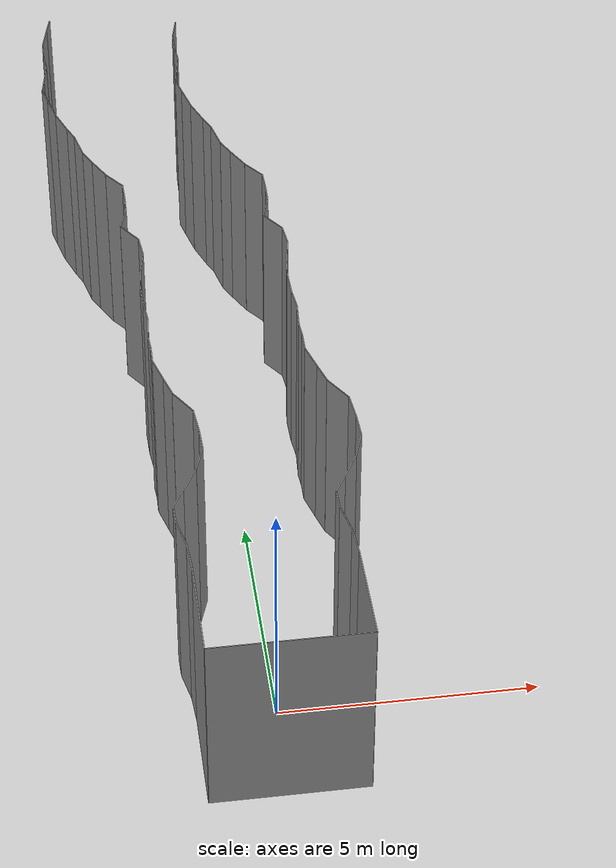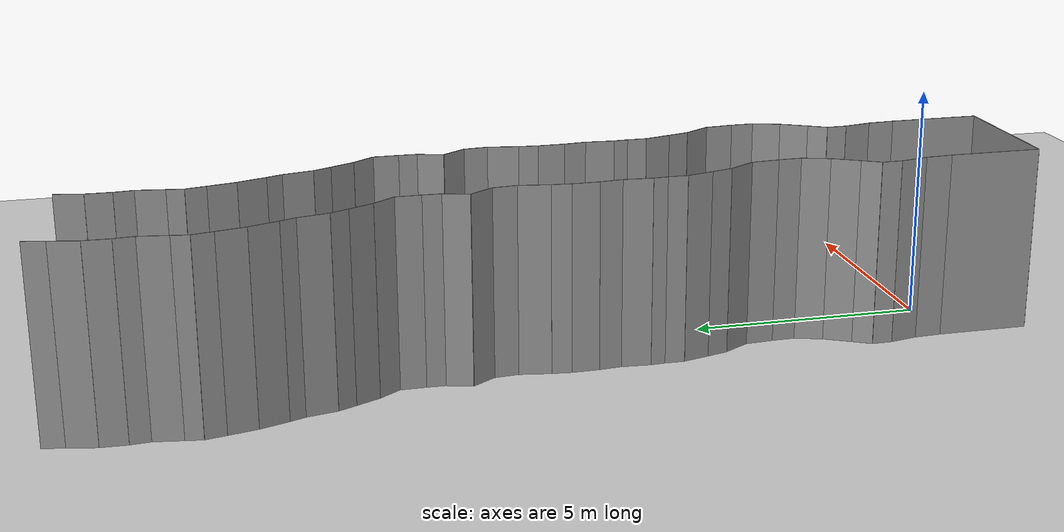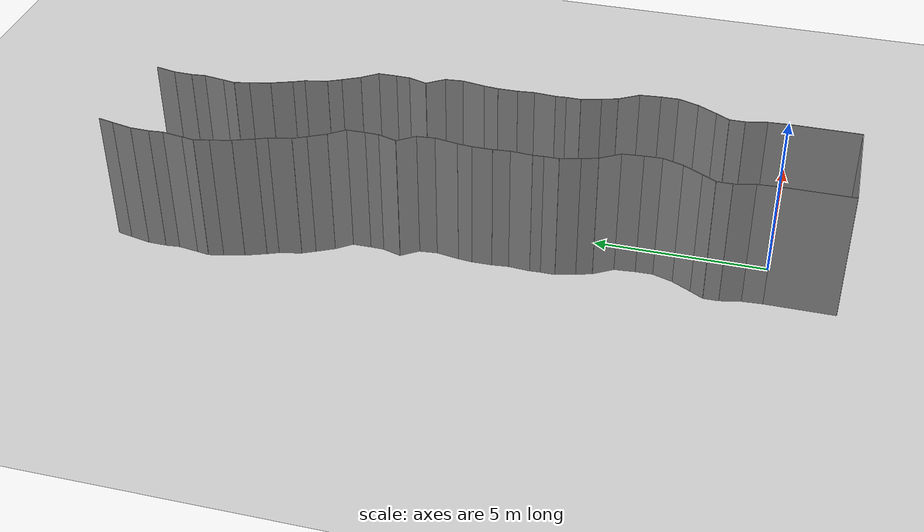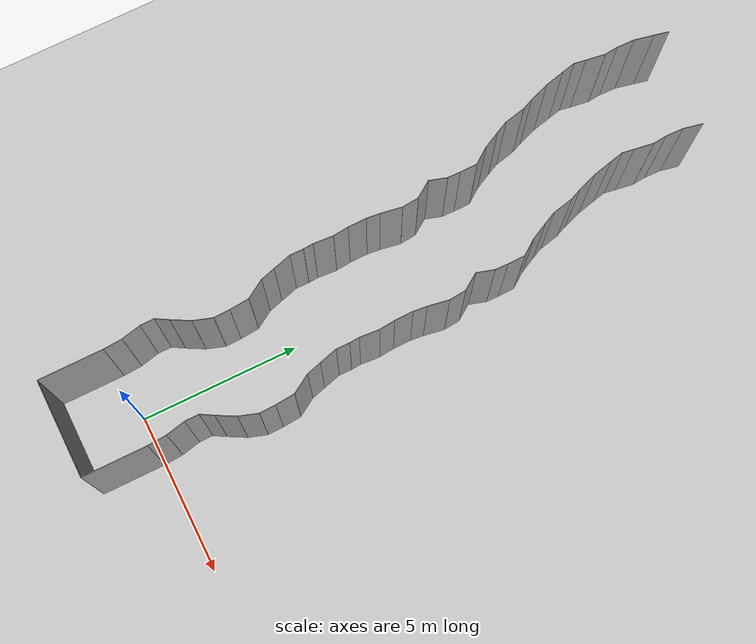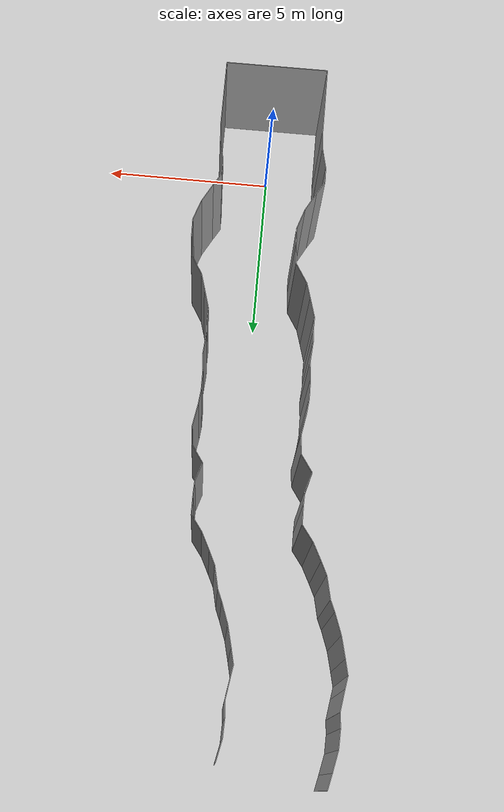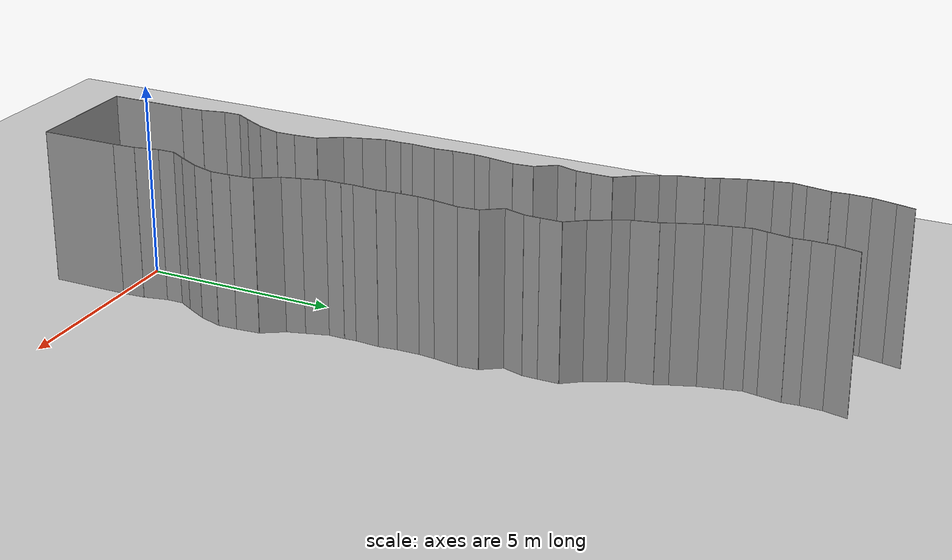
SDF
<sdf version="1.6">
 <world name="default">
  <model name="ground_plane">
   <static>1</static>
   <link name="link">
    <collision name="collision">
     <geometry><plane><normal>0 0 1</normal><size>200 200</size></plane></geometry>
     <surface><friction><ode><mu>100</mu><mu2>50</mu2></ode></friction></surface>
    </collision>
    <visual name="visual">
     <cast_shadows>0</cast_shadows>
     <geometry><plane><normal>0 0 1</normal><size>200 200</size></plane></geometry>
     <material>
      <script><uri>file://media/materials/scripts/gazebo.material</uri><name>Gazebo/Grey</name></script>
     </material>
    </visual>
   </link>
   <pose>0 100 0 0 -0 0</pose>
  </model>
  <model name="wall_back">
   <static>1</static>
   <pose>0.0 -2 2 0.0 0 0.0</pose>
   <link name="link">
    <collision name="collision"><geometry><box><size>3 0.02 4</size></box></geometry></collision>
    <visual name="visual">
     <material>
      <script><name>Gazebo/Grey</name><uri>file://media/materials/scripts/gazebo.material</uri></script>
     </material>
     <geometry><box><size>3 0.02 4</size></box></geometry>
    </visual>
   </link>
  </model>
  <model name="wall_left">
   <static>1</static>
   <pose>1.5 -1 2 0 0 0.00</pose>
   <link name="link">
    <collision name="collision"><geometry><box><size>0.02 2 4</size></box></geometry></collision>
    <visual name="visual">
     <material>
      <script><name>Gazebo/Grey</name><uri>file://media/materials/scripts/gazebo.material</uri></script>
     </material>
     <geometry><box><size>0.02 2 4</size></box></geometry>
    </visual>
   </link>
  </model>
  <model name="wall_right">
   <static>1</static>
   <pose>-1.5 -1 2 0 0 0.00</pose>
   <link name="link">
    <collision name="collision"><geometry><box><size>0.02 2 4</size></box></geometry></collision>
    <visual name="visual">
     <material>
      <script><name>Gazebo/Grey</name><uri>file://media/materials/scripts/gazebo.material</uri></script>
     </material>
     <geometry><box><size>0.02 2 4</size></box></geometry>
    </visual>
   </link>
  </model>
  <model name="wall_0">
   <static>1</static>
   <pose>-1.5185113302899953 0.29492053365941223 2 0 0 0.06268494618193361</pose>
   <link name="link">
    <collision name="collision"><geometry><box><size>0.02 0.591001829178 4</size></box></geometry></collision>
    <visual name="visual">
     <material>
      <script><name>Gazebo/Grey</name><uri>file://media/materials/scripts/gazebo.material</uri></script>
     </material>
     <geometry><box><size>0.02 0.591001829178 4</size></box></geometry>
    </visual>
   </link>
  </model>
  <model name="wall_1">
   <static>1</static>
   <pose>1.4814886697100047 0.29492053365941223 2 0 0 0.06268494618193361</pose>
   <link name="link">
    <collision name="collision"><geometry><box><size>0.02 0.591001829178 4</size></box></geometry></collision>
    <visual name="visual">
     <material>
      <script><name>Gazebo/Grey</name><uri>file://media/materials/scripts/gazebo.material</uri></script>
     </material>
     <geometry><box><size>0.02 0.591001829178 4</size></box></geometry>
    </visual>
   </link>
  </model>
  <model name="wall_2">
   <static>1</static>
   <pose>-1.6032829919916214 0.8934209799906332 2 0 0 0.21489310873033826</pose>
   <link name="link">
    <collision name="collision"><geometry><box><size>0.02 0.621453763032 4</size></box></geometry></collision>
    <visual name="visual">
     <material>
      <script><name>Gazebo/Grey</name><uri>file://media/materials/scripts/gazebo.material</uri></script>
     </material>
     <geometry><box><size>0.02 0.621453763032 4</size></box></geometry>
    </visual>
   </link>
  </model>
  <model name="wall_3">
   <static>1</static>
   <pose>1.3967170080083786 0.8934209799906332 2 0 0 0.21489310873033826</pose>
   <link name="link">
    <collision name="collision"><geometry><box><size>0.02 0.621453763032 4</size></box></geometry></collision>
    <visual name="visual">
     <material>
      <script><name>Gazebo/Grey</name><uri>file://media/materials/scripts/gazebo.material</uri></script>
     </material>
     <geometry><box><size>0.02 0.621453763032 4</size></box></geometry>
    </visual>
   </link>
  </model>
  <model name="wall_4">
   <static>1</static>
   <pose>-1.6717699181645493 1.4165930140627472 2 0 0 0.01013933671222926</pose>
   <link name="link">
    <collision name="collision"><geometry><box><size>0.02 0.439206819188 4</size></box></geometry></collision>
    <visual name="visual">
     <material>
      <script><name>Gazebo/Grey</name><uri>file://media/materials/scripts/gazebo.material</uri></script>
     </material>
     <geometry><box><size>0.02 0.439206819188 4</size></box></geometry>
    </visual>
   </link>
  </model>
  <model name="wall_5">
   <static>1</static>
   <pose>1.3282300818354507 1.4165930140627472 2 0 0 0.01013933671222926</pose>
   <link name="link">
    <collision name="collision"><geometry><box><size>0.02 0.439206819188 4</size></box></geometry></collision>
    <visual name="visual">
     <material>
      <script><name>Gazebo/Grey</name><uri>file://media/materials/scripts/gazebo.material</uri></script>
     </material>
     <geometry><box><size>0.02 0.439206819188 4</size></box></geometry>
    </visual>
   </link>
  </model>
  <model name="wall_6">
   <static>1</static>
   <pose>-1.564483555409787 1.8261166421047403 2 0 0 -0.5230297693793418</pose>
   <link name="link">
    <collision name="collision"><geometry><box><size>0.02 0.438484047961 4</size></box></geometry></collision>
    <visual name="visual">
     <material>
      <script><name>Gazebo/Grey</name><uri>file://media/materials/scripts/gazebo.material</uri></script>
     </material>
     <geometry><box><size>0.02 0.438484047961 4</size></box></geometry>
    </visual>
   </link>
  </model>
  <model name="wall_7">
   <static>1</static>
   <pose>1.435516444590213 1.8261166421047403 2 0 0 -0.5230297693793418</pose>
   <link name="link">
    <collision name="collision"><geometry><box><size>0.02 0.438484047961 4</size></box></geometry></collision>
    <visual name="visual">
     <material>
      <script><name>Gazebo/Grey</name><uri>file://media/materials/scripts/gazebo.material</uri></script>
     </material>
     <geometry><box><size>0.02 0.438484047961 4</size></box></geometry>
    </visual>
   </link>
  </model>
  <model name="wall_8">
   <static>1</static>
   <pose>-1.3079854881451538 2.28842004208476 2 0 0 -0.494861154514529</pose>
   <link name="link">
    <collision name="collision"><geometry><box><size>0.02 0.619002651912 4</size></box></geometry></collision>
    <visual name="visual">
     <material>
      <script><name>Gazebo/Grey</name><uri>file://media/materials/scripts/gazebo.material</uri></script>
     </material>
     <geometry><box><size>0.02 0.619002651912 4</size></box></geometry>
    </visual>
   </link>
  </model>
  <model name="wall_9">
   <static>1</static>
   <pose>1.6920145118548462 2.28842004208476 2 0 0 -0.494861154514529</pose>
   <link name="link">
    <collision name="collision"><geometry><box><size>0.02 0.619002651912 4</size></box></geometry></collision>
    <visual name="visual">
     <material>
      <script><name>Gazebo/Grey</name><uri>file://media/materials/scripts/gazebo.material</uri></script>
     </material>
     <geometry><box><size>0.02 0.619002651912 4</size></box></geometry>
    </visual>
   </link>
  </model>
  <model name="wall_10">
   <static>1</static>
   <pose>-1.0661413791661865 2.85140010841985 2 0 0 -0.31551159724259165</pose>
   <link name="link">
    <collision name="collision"><geometry><box><size>0.02 0.611396237959 4</size></box></geometry></collision>
    <visual name="visual">
     <material>
      <script><name>Gazebo/Grey</name><uri>file://media/materials/scripts/gazebo.material</uri></script>
     </material>
     <geometry><box><size>0.02 0.611396237959 4</size></box></geometry>
    </visual>
   </link>
  </model>
  <model name="wall_11">
   <static>1</static>
   <pose>1.9338586208338135 2.85140010841985 2 0 0 -0.31551159724259165</pose>
   <link name="link">
    <collision name="collision"><geometry><box><size>0.02 0.611396237959 4</size></box></geometry></collision>
    <visual name="visual">
     <material>
      <script><name>Gazebo/Grey</name><uri>file://media/materials/scripts/gazebo.material</uri></script>
     </material>
     <geometry><box><size>0.02 0.611396237959 4</size></box></geometry>
    </visual>
   </link>
  </model>
  <model name="wall_12">
   <static>1</static>
   <pose>-0.9777345321164603 3.392752021765001 2 0 0 0.02572637970492103</pose>
   <link name="link">
    <collision name="collision"><geometry><box><size>0.02 0.501653480369 4</size></box></geometry></collision>
    <visual name="visual">
     <material>
      <script><name>Gazebo/Grey</name><uri>file://media/materials/scripts/gazebo.material</uri></script>
     </material>
     <geometry><box><size>0.02 0.501653480369 4</size></box></geometry>
    </visual>
   </link>
  </model>
  <model name="wall_13">
   <static>1</static>
   <pose>2.02226546788354 3.392752021765001 2 0 0 0.02572637970492103</pose>
   <link name="link">
    <collision name="collision"><geometry><box><size>0.02 0.501653480369 4</size></box></geometry></collision>
    <visual name="visual">
     <material>
      <script><name>Gazebo/Grey</name><uri>file://media/materials/scripts/gazebo.material</uri></script>
     </material>
     <geometry><box><size>0.02 0.501653480369 4</size></box></geometry>
    </visual>
   </link>
  </model>
  <model name="wall_14">
   <static>1</static>
   <pose>-1.0103047833967183 3.9452632291662355 2 0 0 0.08633526419710445</pose>
   <link name="link">
    <collision name="collision"><geometry><box><size>0.02 0.605791248772 4</size></box></geometry></collision>
    <visual name="visual">
     <material>
      <script><name>Gazebo/Grey</name><uri>file://media/materials/scripts/gazebo.material</uri></script>
     </material>
     <geometry><box><size>0.02 0.605791248772 4</size></box></geometry>
    </visual>
   </link>
  </model>
  <model name="wall_15">
   <static>1</static>
   <pose>1.9896952166032817 3.9452632291662355 2 0 0 0.08633526419710445</pose>
   <link name="link">
    <collision name="collision"><geometry><box><size>0.02 0.605791248772 4</size></box></geometry></collision>
    <visual name="visual">
     <material>
      <script><name>Gazebo/Grey</name><uri>file://media/materials/scripts/gazebo.material</uri></script>
     </material>
     <geometry><box><size>0.02 0.605791248772 4</size></box></geometry>
    </visual>
   </link>
  </model>
  <model name="wall_16">
   <static>1</static>
   <pose>-1.2070850937719821 4.525897922408958 2 0 0 0.5491845164646493</pose>
   <link name="link">
    <collision name="collision"><geometry><box><size>0.02 0.653888431463 4</size></box></geometry></collision>
    <visual name="visual">
     <material>
      <script><name>Gazebo/Grey</name><uri>file://media/materials/scripts/gazebo.material</uri></script>
     </material>
     <geometry><box><size>0.02 0.653888431463 4</size></box></geometry>
    </visual>
   </link>
  </model>
  <model name="wall_17">
   <static>1</static>
   <pose>1.7929149062280179 4.525897922408958 2 0 0 0.5491845164646493</pose>
   <link name="link">
    <collision name="collision"><geometry><box><size>0.02 0.653888431463 4</size></box></geometry></collision>
    <visual name="visual">
     <material>
      <script><name>Gazebo/Grey</name><uri>file://media/materials/scripts/gazebo.material</uri></script>
     </material>
     <geometry><box><size>0.02 0.653888431463 4</size></box></geometry>
    </visual>
   </link>
  </model>
  <model name="wall_18">
   <static>1</static>
   <pose>-1.4438042020006907 5.031598427493949 2 0 0 0.28337635448221904</pose>
   <link name="link">
    <collision name="collision"><geometry><box><size>0.02 0.472511799003 4</size></box></geometry></collision>
    <visual name="visual">
     <material>
      <script><name>Gazebo/Grey</name><uri>file://media/materials/scripts/gazebo.material</uri></script>
     </material>
     <geometry><box><size>0.02 0.472511799003 4</size></box></geometry>
    </visual>
   </link>
  </model>
  <model name="wall_19">
   <static>1</static>
   <pose>1.5561957979993093 5.031598427493949 2 0 0 0.28337635448221904</pose>
   <link name="link">
    <collision name="collision"><geometry><box><size>0.02 0.472511799003 4</size></box></geometry></collision>
    <visual name="visual">
     <material>
      <script><name>Gazebo/Grey</name><uri>file://media/materials/scripts/gazebo.material</uri></script>
     </material>
     <geometry><box><size>0.02 0.472511799003 4</size></box></geometry>
    </visual>
   </link>
  </model>
  <model name="wall_20">
   <static>1</static>
   <pose>-1.5890637419099451 5.540976157062023 2 0 0 0.2733047007655978</pose>
   <link name="link">
    <collision name="collision"><geometry><box><size>0.02 0.586871111088 4</size></box></geometry></collision>
    <visual name="visual">
     <material>
      <script><name>Gazebo/Grey</name><uri>file://media/materials/scripts/gazebo.material</uri></script>
     </material>
     <geometry><box><size>0.02 0.586871111088 4</size></box></geometry>
    </visual>
   </link>
  </model>
  <model name="wall_21">
   <static>1</static>
   <pose>1.4109362580900549 5.540976157062023 2 0 0 0.2733047007655978</pose>
   <link name="link">
    <collision name="collision"><geometry><box><size>0.02 0.586871111088 4</size></box></geometry></collision>
    <visual name="visual">
     <material>
      <script><name>Gazebo/Grey</name><uri>file://media/materials/scripts/gazebo.material</uri></script>
     </material>
     <geometry><box><size>0.02 0.586871111088 4</size></box></geometry>
    </visual>
   </link>
  </model>
  <model name="wall_22">
   <static>1</static>
   <pose>-1.6657555820865915 6.032643910130681 2 0 0 -0.012005750270716417</pose>
   <link name="link">
    <collision name="collision"><geometry><box><size>0.02 0.418276749225 4</size></box></geometry></collision>
    <visual name="visual">
     <material>
      <script><name>Gazebo/Grey</name><uri>file://media/materials/scripts/gazebo.material</uri></script>
     </material>
     <geometry><box><size>0.02 0.418276749225 4</size></box></geometry>
    </visual>
   </link>
  </model>
  <model name="wall_23">
   <static>1</static>
   <pose>1.3342444179134085 6.032643910130681 2 0 0 -0.012005750270716417</pose>
   <link name="link">
    <collision name="collision"><geometry><box><size>0.02 0.418276749225 4</size></box></geometry></collision>
    <visual name="visual">
     <material>
      <script><name>Gazebo/Grey</name><uri>file://media/materials/scripts/gazebo.material</uri></script>
     </material>
     <geometry><box><size>0.02 0.418276749225 4</size></box></geometry>
    </visual>
   </link>
  </model>
  <model name="wall_24">
   <static>1</static>
   <pose>-1.673975837094244 6.395071165094762 2 0 0 0.06988458076299657</pose>
   <link name="link">
    <collision name="collision"><geometry><box><size>0.02 0.307358145975 4</size></box></geometry></collision>
    <visual name="visual">
     <material>
      <script><name>Gazebo/Grey</name><uri>file://media/materials/scripts/gazebo.material</uri></script>
     </material>
     <geometry><box><size>0.02 0.307358145975 4</size></box></geometry>
    </visual>
   </link>
  </model>
  <model name="wall_25">
   <static>1</static>
   <pose>1.326024162905756 6.395071165094762 2 0 0 0.06988458076299657</pose>
   <link name="link">
    <collision name="collision"><geometry><box><size>0.02 0.307358145975 4</size></box></geometry></collision>
    <visual name="visual">
     <material>
      <script><name>Gazebo/Grey</name><uri>file://media/materials/scripts/gazebo.material</uri></script>
     </material>
     <geometry><box><size>0.02 0.307358145975 4</size></box></geometry>
    </visual>
   </link>
  </model>
  <model name="wall_26">
   <static>1</static>
   <pose>-1.6623951007712896 6.860203549148598 2 0 0 -0.07142977496817592</pose>
   <link name="link">
    <collision name="collision"><geometry><box><size>0.02 0.625251267377 4</size></box></geometry></collision>
    <visual name="visual">
     <material>
      <script><name>Gazebo/Grey</name><uri>file://media/materials/scripts/gazebo.material</uri></script>
     </material>
     <geometry><box><size>0.02 0.625251267377 4</size></box></geometry>
    </visual>
   </link>
  </model>
  <model name="wall_27">
   <static>1</static>
   <pose>1.3376048992287104 6.860203549148598 2 0 0 -0.07142977496817592</pose>
   <link name="link">
    <collision name="collision"><geometry><box><size>0.02 0.625251267377 4</size></box></geometry></collision>
    <visual name="visual">
     <material>
      <script><name>Gazebo/Grey</name><uri>file://media/materials/scripts/gazebo.material</uri></script>
     </material>
     <geometry><box><size>0.02 0.625251267377 4</size></box></geometry>
    </visual>
   </link>
  </model>
  <model name="wall_28">
   <static>1</static>
   <pose>-1.663334344448311 7.41137713941059 2 0 0 0.09684051691092106</pose>
   <link name="link">
    <collision name="collision"><geometry><box><size>0.02 0.480943721398 4</size></box></geometry></collision>
    <visual name="visual">
     <material>
      <script><name>Gazebo/Grey</name><uri>file://media/materials/scripts/gazebo.material</uri></script>
     </material>
     <geometry><box><size>0.02 0.480943721398 4</size></box></geometry>
    </visual>
   </link>
  </model>
  <model name="wall_29">
   <static>1</static>
   <pose>1.336665655551689 7.41137713941059 2 0 0 0.09684051691092106</pose>
   <link name="link">
    <collision name="collision"><geometry><box><size>0.02 0.480943721398 4</size></box></geometry></collision>
    <visual name="visual">
     <material>
      <script><name>Gazebo/Grey</name><uri>file://media/materials/scripts/gazebo.material</uri></script>
     </material>
     <geometry><box><size>0.02 0.480943721398 4</size></box></geometry>
    </visual>
   </link>
  </model>
  <model name="wall_30">
   <static>1</static>
   <pose>-1.6903792075558648 7.939358403514229 2 0 0 0.013143216645869699</pose>
   <link name="link">
    <collision name="collision"><geometry><box><size>0.02 0.57732207444 4</size></box></geometry></collision>
    <visual name="visual">
     <material>
      <script><name>Gazebo/Grey</name><uri>file://media/materials/scripts/gazebo.material</uri></script>
     </material>
     <geometry><box><size>0.02 0.57732207444 4</size></box></geometry>
    </visual>
   </link>
  </model>
  <model name="wall_31">
   <static>1</static>
   <pose>1.3096207924441352 7.939358403514229 2 0 0 0.013143216645869699</pose>
   <link name="link">
    <collision name="collision"><geometry><box><size>0.02 0.57732207444 4</size></box></geometry></collision>
    <visual name="visual">
     <material>
      <script><name>Gazebo/Grey</name><uri>file://media/materials/scripts/gazebo.material</uri></script>
     </material>
     <geometry><box><size>0.02 0.57732207444 4</size></box></geometry>
    </visual>
   </link>
  </model>
  <model name="wall_32">
   <static>1</static>
   <pose>-1.6734789334931783 8.435392126474458 2 0 0 -0.09945065932975414</pose>
   <link name="link">
    <collision name="collision"><geometry><box><size>0.02 0.416854975017 4</size></box></geometry></collision>
    <visual name="visual">
     <material>
      <script><name>Gazebo/Grey</name><uri>file://media/materials/scripts/gazebo.material</uri></script>
     </material>
     <geometry><box><size>0.02 0.416854975017 4</size></box></geometry>
    </visual>
   </link>
  </model>
  <model name="wall_33">
   <static>1</static>
   <pose>1.3265210665068217 8.435392126474458 2 0 0 -0.09945065932975414</pose>
   <link name="link">
    <collision name="collision"><geometry><box><size>0.02 0.416854975017 4</size></box></geometry></collision>
    <visual name="visual">
     <material>
      <script><name>Gazebo/Grey</name><uri>file://media/materials/scripts/gazebo.material</uri></script>
     </material>
     <geometry><box><size>0.02 0.416854975017 4</size></box></geometry>
    </visual>
   </link>
  </model>
  <model name="wall_34">
   <static>1</static>
   <pose>-1.5974431035443908 8.97267009533746 2 0 0 -0.16621522903037272</pose>
   <link name="link">
    <collision name="collision"><geometry><box><size>0.02 0.668980577504 4</size></box></geometry></collision>
    <visual name="visual">
     <material>
      <script><name>Gazebo/Grey</name><uri>file://media/materials/scripts/gazebo.material</uri></script>
     </material>
     <geometry><box><size>0.02 0.668980577504 4</size></box></geometry>
    </visual>
   </link>
  </model>
  <model name="wall_35">
   <static>1</static>
   <pose>1.4025568964556092 8.97267009533746 2 0 0 -0.16621522903037272</pose>
   <link name="link">
    <collision name="collision"><geometry><box><size>0.02 0.668980577504 4</size></box></geometry></collision>
    <visual name="visual">
     <material>
      <script><name>Gazebo/Grey</name><uri>file://media/materials/scripts/gazebo.material</uri></script>
     </material>
     <geometry><box><size>0.02 0.668980577504 4</size></box></geometry>
    </visual>
   </link>
  </model>
  <model name="wall_36">
   <static>1</static>
   <pose>-1.5653315406791224 9.559392271478405 2 0 0 0.09020000143591118</pose>
   <link name="link">
    <collision name="collision"><geometry><box><size>0.02 0.515780432801 4</size></box></geometry></collision>
    <visual name="visual">
     <material>
      <script><name>Gazebo/Grey</name><uri>file://media/materials/scripts/gazebo.material</uri></script>
     </material>
     <geometry><box><size>0.02 0.515780432801 4</size></box></geometry>
    </visual>
   </link>
  </model>
  <model name="wall_37">
   <static>1</static>
   <pose>1.4346684593208776 9.559392271478405 2 0 0 0.09020000143591118</pose>
   <link name="link">
    <collision name="collision"><geometry><box><size>0.02 0.515780432801 4</size></box></geometry></collision>
    <visual name="visual">
     <material>
      <script><name>Gazebo/Grey</name><uri>file://media/materials/scripts/gazebo.material</uri></script>
     </material>
     <geometry><box><size>0.02 0.515780432801 4</size></box></geometry>
    </visual>
   </link>
  </model>
  <model name="wall_38">
   <static>1</static>
   <pose>-1.755232263156484 10.061373956086669 2 0 0 0.5971081742099745</pose>
   <link name="link">
    <collision name="collision"><geometry><box><size>0.02 0.592866341234 4</size></box></geometry></collision>
    <visual name="visual">
     <material>
      <script><name>Gazebo/Grey</name><uri>file://media/materials/scripts/gazebo.material</uri></script>
     </material>
     <geometry><box><size>0.02 0.592866341234 4</size></box></geometry>
    </visual>
   </link>
  </model>
  <model name="wall_39">
   <static>1</static>
   <pose>1.244767736843516 10.061373956086669 2 0 0 0.5971081742099745</pose>
   <link name="link">
    <collision name="collision"><geometry><box><size>0.02 0.592866341234 4</size></box></geometry></collision>
    <visual name="visual">
     <material>
      <script><name>Gazebo/Grey</name><uri>file://media/materials/scripts/gazebo.material</uri></script>
     </material>
     <geometry><box><size>0.02 0.592866341234 4</size></box></geometry>
    </visual>
   </link>
  </model>
  <model name="wall_40">
   <static>1</static>
   <pose>-1.8415697863617506 10.573384954875786 2 0 0 -0.29239052917902836</pose>
   <link name="link">
    <collision name="collision"><geometry><box><size>0.02 0.557399680092 4</size></box></geometry></collision>
    <visual name="visual">
     <material>
      <script><name>Gazebo/Grey</name><uri>file://media/materials/scripts/gazebo.material</uri></script>
     </material>
     <geometry><box><size>0.02 0.557399680092 4</size></box></geometry>
    </visual>
   </link>
  </model>
  <model name="wall_41">
   <static>1</static>
   <pose>1.1584302136382494 10.573384954875786 2 0 0 -0.29239052917902836</pose>
   <link name="link">
    <collision name="collision"><geometry><box><size>0.02 0.557399680092 4</size></box></geometry></collision>
    <visual name="visual">
     <material>
      <script><name>Gazebo/Grey</name><uri>file://media/materials/scripts/gazebo.material</uri></script>
     </material>
     <geometry><box><size>0.02 0.557399680092 4</size></box></geometry>
    </visual>
   </link>
  </model>
  <model name="wall_42">
   <static>1</static>
   <pose>-1.7560762919183144 11.035589577510985 2 0 0 -0.026412587847882592</pose>
   <link name="link">
    <collision name="collision"><geometry><box><size>0.02 0.39080327619 4</size></box></geometry></collision>
    <visual name="visual">
     <material>
      <script><name>Gazebo/Grey</name><uri>file://media/materials/scripts/gazebo.material</uri></script>
     </material>
     <geometry><box><size>0.02 0.39080327619 4</size></box></geometry>
    </visual>
   </link>
  </model>
  <model name="wall_43">
   <static>1</static>
   <pose>1.2439237080816856 11.035589577510985 2 0 0 -0.026412587847882592</pose>
   <link name="link">
    <collision name="collision"><geometry><box><size>0.02 0.39080327619 4</size></box></geometry></collision>
    <visual name="visual">
     <material>
      <script><name>Gazebo/Grey</name><uri>file://media/materials/scripts/gazebo.material</uri></script>
     </material>
     <geometry><box><size>0.02 0.39080327619 4</size></box></geometry>
    </visual>
   </link>
  </model>
  <model name="wall_44">
   <static>1</static>
   <pose>-1.7538173183699357 11.498250930627945 2 0 0 0.010853246996506407</pose>
   <link name="link">
    <collision name="collision"><geometry><box><size>0.02 0.534687230037 4</size></box></geometry></collision>
    <visual name="visual">
     <material>
      <script><name>Gazebo/Grey</name><uri>file://media/materials/scripts/gazebo.material</uri></script>
     </material>
     <geometry><box><size>0.02 0.534687230037 4</size></box></geometry>
    </visual>
   </link>
  </model>
  <model name="wall_45">
   <static>1</static>
   <pose>1.2461826816300643 11.498250930627945 2 0 0 0.010853246996506407</pose>
   <link name="link">
    <collision name="collision"><geometry><box><size>0.02 0.534687230037 4</size></box></geometry></collision>
    <visual name="visual">
     <material>
      <script><name>Gazebo/Grey</name><uri>file://media/materials/scripts/gazebo.material</uri></script>
     </material>
     <geometry><box><size>0.02 0.534687230037 4</size></box></geometry>
    </visual>
   </link>
  </model>
  <model name="wall_46">
   <static>1</static>
   <pose>-1.919704327145059 11.989113639711922 2 0 0 0.6300086907917413</pose>
   <link name="link">
    <collision name="collision"><geometry><box><size>0.02 0.553288727613 4</size></box></geometry></collision>
    <visual name="visual">
     <material>
      <script><name>Gazebo/Grey</name><uri>file://media/materials/scripts/gazebo.material</uri></script>
     </material>
     <geometry><box><size>0.02 0.553288727613 4</size></box></geometry>
    </visual>
   </link>
  </model>
  <model name="wall_47">
   <static>1</static>
   <pose>1.080295672854941 11.989113639711922 2 0 0 0.6300086907917413</pose>
   <link name="link">
    <collision name="collision"><geometry><box><size>0.02 0.553288727613 4</size></box></geometry></collision>
    <visual name="visual">
     <material>
      <script><name>Gazebo/Grey</name><uri>file://media/materials/scripts/gazebo.material</uri></script>
     </material>
     <geometry><box><size>0.02 0.553288727613 4</size></box></geometry>
    </visual>
   </link>
  </model>
  <model name="wall_48">
   <static>1</static>
   <pose>-2.208310492446414 12.460964968108582 2 0 0 0.4683479131257227</pose>
   <link name="link">
    <collision name="collision"><geometry><box><size>0.02 0.55656670873 4</size></box></geometry></collision>
    <visual name="visual">
     <material>
      <script><name>Gazebo/Grey</name><uri>file://media/materials/scripts/gazebo.material</uri></script>
     </material>
     <geometry><box><size>0.02 0.55656670873 4</size></box></geometry>
    </visual>
   </link>
  </model>
  <model name="wall_49">
   <static>1</static>
   <pose>0.7916895075535861 12.460964968108582 2 0 0 0.4683479131257227</pose>
   <link name="link">
    <collision name="collision"><geometry><box><size>0.02 0.55656670873 4</size></box></geometry></collision>
    <visual name="visual">
     <material>
      <script><name>Gazebo/Grey</name><uri>file://media/materials/scripts/gazebo.material</uri></script>
     </material>
     <geometry><box><size>0.02 0.55656670873 4</size></box></geometry>
    </visual>
   </link>
  </model>
  <model name="wall_50">
   <static>1</static>
   <pose>-2.422641076564206 12.894296970132887 2 0 0 0.4470915497425742</pose>
   <link name="link">
    <collision name="collision"><geometry><box><size>0.02 0.410366632412 4</size></box></geometry></collision>
    <visual name="visual">
     <material>
      <script><name>Gazebo/Grey</name><uri>file://media/materials/scripts/gazebo.material</uri></script>
     </material>
     <geometry><box><size>0.02 0.410366632412 4</size></box></geometry>
    </visual>
   </link>
  </model>
  <model name="wall_51">
   <static>1</static>
   <pose>0.5773589234357939 12.894296970132887 2 0 0 0.4470915497425742</pose>
   <link name="link">
    <collision name="collision"><geometry><box><size>0.02 0.410366632412 4</size></box></geometry></collision>
    <visual name="visual">
     <material>
      <script><name>Gazebo/Grey</name><uri>file://media/materials/scripts/gazebo.material</uri></script>
     </material>
     <geometry><box><size>0.02 0.410366632412 4</size></box></geometry>
    </visual>
   </link>
  </model>
  <model name="wall_52">
   <static>1</static>
   <pose>-2.581965683001096 13.399046261598889 2 0 0 0.21736528301390892</pose>
   <link name="link">
    <collision name="collision"><geometry><box><size>0.02 0.654877455298 4</size></box></geometry></collision>
    <visual name="visual">
     <material>
      <script><name>Gazebo/Grey</name><uri>file://media/materials/scripts/gazebo.material</uri></script>
     </material>
     <geometry><box><size>0.02 0.654877455298 4</size></box></geometry>
    </visual>
   </link>
  </model>
  <model name="wall_53">
   <static>1</static>
   <pose>0.41803431699890403 13.399046261598889 2 0 0 0.21736528301390892</pose>
   <link name="link">
    <collision name="collision"><geometry><box><size>0.02 0.654877455298 4</size></box></geometry></collision>
    <visual name="visual">
     <material>
      <script><name>Gazebo/Grey</name><uri>file://media/materials/scripts/gazebo.material</uri></script>
     </material>
     <geometry><box><size>0.02 0.654877455298 4</size></box></geometry>
    </visual>
   </link>
  </model>
  <model name="wall_54">
   <static>1</static>
   <pose>-2.719855267819281 13.877838774071202 2 0 0 0.4001384649570777</pose>
   <link name="link">
    <collision name="collision"><geometry><box><size>0.02 0.345401767904 4</size></box></geometry></collision>
    <visual name="visual">
     <material>
      <script><name>Gazebo/Grey</name><uri>file://media/materials/scripts/gazebo.material</uri></script>
     </material>
     <geometry><box><size>0.02 0.345401767904 4</size></box></geometry>
    </visual>
   </link>
  </model>
  <model name="wall_55">
   <static>1</static>
   <pose>0.2801447321807191 13.877838774071202 2 0 0 0.4001384649570777</pose>
   <link name="link">
    <collision name="collision"><geometry><box><size>0.02 0.345401767904 4</size></box></geometry></collision>
    <visual name="visual">
     <material>
      <script><name>Gazebo/Grey</name><uri>file://media/materials/scripts/gazebo.material</uri></script>
     </material>
     <geometry><box><size>0.02 0.345401767904 4</size></box></geometry>
    </visual>
   </link>
  </model>
  <model name="wall_56">
   <static>1</static>
   <pose>-2.894246697715273 14.333794653706013 2 0 0 0.34625176333253266</pose>
   <link name="link">
    <collision name="collision"><geometry><box><size>0.02 0.63125862342 4</size></box></geometry></collision>
    <visual name="visual">
     <material>
      <script><name>Gazebo/Grey</name><uri>file://media/materials/scripts/gazebo.material</uri></script>
     </material>
     <geometry><box><size>0.02 0.63125862342 4</size></box></geometry>
    </visual>
   </link>
  </model>
  <model name="wall_57">
   <static>1</static>
   <pose>0.10575330228472701 14.333794653706013 2 0 0 0.34625176333253266</pose>
   <link name="link">
    <collision name="collision"><geometry><box><size>0.02 0.63125862342 4</size></box></geometry></collision>
    <visual name="visual">
     <material>
      <script><name>Gazebo/Grey</name><uri>file://media/materials/scripts/gazebo.material</uri></script>
     </material>
     <geometry><box><size>0.02 0.63125862342 4</size></box></geometry>
    </visual>
   </link>
  </model>
  <model name="wall_58">
   <static>1</static>
   <pose>-3.0720271532514403 14.928912579485683 2 0 0 0.23266078091612422</pose>
   <link name="link">
    <collision name="collision"><geometry><box><size>0.02 0.612956855043 4</size></box></geometry></collision>
    <visual name="visual">
     <material>
      <script><name>Gazebo/Grey</name><uri>file://media/materials/scripts/gazebo.material</uri></script>
     </material>
     <geometry><box><size>0.02 0.612956855043 4</size></box></geometry>
    </visual>
   </link>
  </model>
  <model name="wall_59">
   <static>1</static>
   <pose>-0.07202715325144027 14.928912579485683 2 0 0 0.23266078091612422</pose>
   <link name="link">
    <collision name="collision"><geometry><box><size>0.02 0.612956855043 4</size></box></geometry></collision>
    <visual name="visual">
     <material>
      <script><name>Gazebo/Grey</name><uri>file://media/materials/scripts/gazebo.material</uri></script>
     </material>
     <geometry><box><size>0.02 0.612956855043 4</size></box></geometry>
    </visual>
   </link>
  </model>
  <model name="wall_60">
   <static>1</static>
   <pose>-3.1908167746002554 15.440115685265646 2 0 0 0.22222885732073538</pose>
   <link name="link">
    <collision name="collision"><geometry><box><size>0.02 0.43670379873 4</size></box></geometry></collision>
    <visual name="visual">
     <material>
      <script><name>Gazebo/Grey</name><uri>file://media/materials/scripts/gazebo.material</uri></script>
     </material>
     <geometry><box><size>0.02 0.43670379873 4</size></box></geometry>
    </visual>
   </link>
  </model>
  <model name="wall_61">
   <static>1</static>
   <pose>-0.19081677460025537 15.440115685265646 2 0 0 0.22222885732073538</pose>
   <link name="link">
    <collision name="collision"><geometry><box><size>0.02 0.43670379873 4</size></box></geometry></collision>
    <visual name="visual">
     <material>
      <script><name>Gazebo/Grey</name><uri>file://media/materials/scripts/gazebo.material</uri></script>
     </material>
     <geometry><box><size>0.02 0.43670379873 4</size></box></geometry>
    </visual>
   </link>
  </model>
  <model name="wall_62">
   <static>1</static>
   <pose>-3.2113391722653755 15.830278466206284 2 0 0 -0.15454953704472477</pose>
   <link name="link">
    <collision name="collision"><geometry><box><size>0.02 0.358635497056 4</size></box></geometry></collision>
    <visual name="visual">
     <material>
      <script><name>Gazebo/Grey</name><uri>file://media/materials/scripts/gazebo.material</uri></script>
     </material>
     <geometry><box><size>0.02 0.358635497056 4</size></box></geometry>
    </visual>
   </link>
  </model>
  <model name="wall_63">
   <static>1</static>
   <pose>-0.21133917226537546 15.830278466206284 2 0 0 -0.15454953704472477</pose>
   <link name="link">
    <collision name="collision"><geometry><box><size>0.02 0.358635497056 4</size></box></geometry></collision>
    <visual name="visual">
     <material>
      <script><name>Gazebo/Grey</name><uri>file://media/materials/scripts/gazebo.material</uri></script>
     </material>
     <geometry><box><size>0.02 0.358635497056 4</size></box></geometry>
    </visual>
   </link>
  </model>
  <model name="wall_64">
   <static>1</static>
   <pose>-3.1394372593649806 16.306207406749902 2 0 0 -0.14720804821156833</pose>
   <link name="link">
    <collision name="collision"><geometry><box><size>0.02 0.604029887006 4</size></box></geometry></collision>
    <visual name="visual">
     <material>
      <script><name>Gazebo/Grey</name><uri>file://media/materials/scripts/gazebo.material</uri></script>
     </material>
     <geometry><box><size>0.02 0.604029887006 4</size></box></geometry>
    </visual>
   </link>
  </model>
  <model name="wall_65">
   <static>1</static>
   <pose>-0.13943725936498064 16.306207406749902 2 0 0 -0.14720804821156833</pose>
   <link name="link">
    <collision name="collision"><geometry><box><size>0.02 0.604029887006 4</size></box></geometry></collision>
    <visual name="visual">
     <material>
      <script><name>Gazebo/Grey</name><uri>file://media/materials/scripts/gazebo.material</uri></script>
     </material>
     <geometry><box><size>0.02 0.604029887006 4</size></box></geometry>
    </visual>
   </link>
  </model>
  <model name="wall_66">
   <static>1</static>
   <pose>-3.1146367073302277 16.80770840488149 2 0 0 0.09587207561579213</pose>
   <link name="link">
    <collision name="collision"><geometry><box><size>0.02 0.407375780557 4</size></box></geometry></collision>
    <visual name="visual">
     <material>
      <script><name>Gazebo/Grey</name><uri>file://media/materials/scripts/gazebo.material</uri></script>
     </material>
     <geometry><box><size>0.02 0.407375780557 4</size></box></geometry>
    </visual>
   </link>
  </model>
  <model name="wall_67">
   <static>1</static>
   <pose>-0.11463670733022768 16.80770840488149 2 0 0 0.09587207561579213</pose>
   <link name="link">
    <collision name="collision"><geometry><box><size>0.02 0.407375780557 4</size></box></geometry></collision>
    <visual name="visual">
     <material>
      <script><name>Gazebo/Grey</name><uri>file://media/materials/scripts/gazebo.material</uri></script>
     </material>
     <geometry><box><size>0.02 0.407375780557 4</size></box></geometry>
    </visual>
   </link>
  </model>
  <model name="wall_68">
   <static>1</static>
   <pose>-3.127381730957775 17.28029139107389 2 0 0 -0.02502180855981599</pose>
   <link name="link">
    <collision name="collision"><geometry><box><size>0.02 0.539829928796 4</size></box></geometry></collision>
    <visual name="visual">
     <material>
      <script><name>Gazebo/Grey</name><uri>file://media/materials/scripts/gazebo.material</uri></script>
     </material>
     <geometry><box><size>0.02 0.539829928796 4</size></box></geometry>
    </visual>
   </link>
  </model>
  <model name="wall_69">
   <static>1</static>
   <pose>-0.12738173095777494 17.28029139107389 2 0 0 -0.02502180855981599</pose>
   <link name="link">
    <collision name="collision"><geometry><box><size>0.02 0.539829928796 4</size></box></geometry></collision>
    <visual name="visual">
     <material>
      <script><name>Gazebo/Grey</name><uri>file://media/materials/scripts/gazebo.material</uri></script>
     </material>
     <geometry><box><size>0.02 0.539829928796 4</size></box></geometry>
    </visual>
   </link>
  </model>
  <model name="wall_70">
   <static>1</static>
   <pose>-3.0596355731426916 17.846945582226983 2 0 0 -0.20266489833488943</pose>
   <link name="link">
    <collision name="collision"><geometry><box><size>0.02 0.606051080535 4</size></box></geometry></collision>
    <visual name="visual">
     <material>
      <script><name>Gazebo/Grey</name><uri>file://media/materials/scripts/gazebo.material</uri></script>
     </material>
     <geometry><box><size>0.02 0.606051080535 4</size></box></geometry>
    </visual>
   </link>
  </model>
  <model name="wall_71">
   <static>1</static>
   <pose>-0.059635573142691634 17.846945582226983 2 0 0 -0.20266489833488943</pose>
   <link name="link">
    <collision name="collision"><geometry><box><size>0.02 0.606051080535 4</size></box></geometry></collision>
    <visual name="visual">
     <material>
      <script><name>Gazebo/Grey</name><uri>file://media/materials/scripts/gazebo.material</uri></script>
     </material>
     <geometry><box><size>0.02 0.606051080535 4</size></box></geometry>
    </visual>
   </link>
  </model>
  <model name="wall_72">
   <static>1</static>
   <pose>-2.9493742182097082 18.367264299910254 2 0 0 -0.21697428535780522</pose>
   <link name="link">
    <collision name="collision"><geometry><box><size>0.02 0.457722080018 4</size></box></geometry></collision>
    <visual name="visual">
     <material>
      <script><name>Gazebo/Grey</name><uri>file://media/materials/scripts/gazebo.material</uri></script>
     </material>
     <geometry><box><size>0.02 0.457722080018 4</size></box></geometry>
    </visual>
   </link>
  </model>
 </world>
</sdf>
